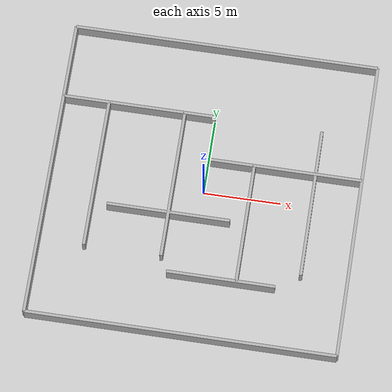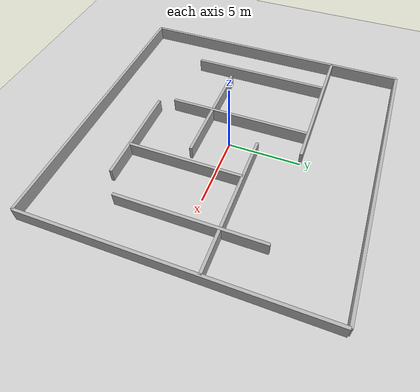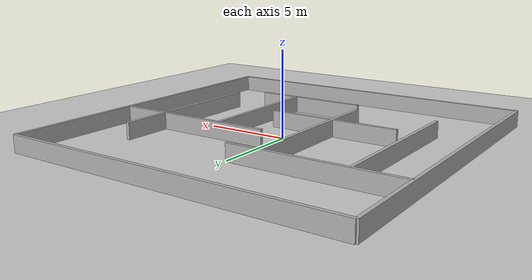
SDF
<sdf version="1.6">
 <world name="yolobot_maze_world">
  <include><uri>model://sun</uri></include>
  <include><uri>model://ground_plane</uri></include>
  <model name="wall_north">
   <static>true</static>
   <pose>0 10 0.5 0 0 0</pose>
   <link name="link">
    <collision name="collision"><geometry><box><size>20 0.2 1</size></box></geometry></collision>
    <visual name="visual">
     <geometry><box><size>20 0.2 1</size></box></geometry>
     <material><ambient>0.3 0.3 0.3 1</ambient><diffuse>0.7 0.7 0.7 1</diffuse></material>
    </visual>
   </link>
  </model>
  <model name="wall_south">
   <static>true</static>
   <pose>0 -10 0.5 0 0 0</pose>
   <link name="link">
    <collision name="collision"><geometry><box><size>20 0.2 1</size></box></geometry></collision>
    <visual name="visual">
     <geometry><box><size>20 0.2 1</size></box></geometry>
     <material><ambient>0.3 0.3 0.3 1</ambient><diffuse>0.7 0.7 0.7 1</diffuse></material>
    </visual>
   </link>
  </model>
  <model name="wall_east">
   <static>true</static>
   <pose>10 0 0.5 0 0 0</pose>
   <link name="link">
    <collision name="collision"><geometry><box><size>0.2 20 1</size></box></geometry></collision>
    <visual name="visual">
     <geometry><box><size>0.2 20 1</size></box></geometry>
     <material><ambient>0.3 0.3 0.3 1</ambient><diffuse>0.7 0.7 0.7 1</diffuse></material>
    </visual>
   </link>
  </model>
  <model name="wall_west">
   <static>true</static>
   <pose>-10 0 0.5 0 0 0</pose>
   <link name="link">
    <collision name="collision"><geometry><box><size>0.2 20 1</size></box></geometry></collision>
    <visual name="visual">
     <geometry><box><size>0.2 20 1</size></box></geometry>
     <material><ambient>0.3 0.3 0.3 1</ambient><diffuse>0.7 0.7 0.7 1</diffuse></material>
    </visual>
   </link>
  </model>
  <model name="wall_h1">
   <static>true</static>
   <pose>-5 5 0.5 0 0 0</pose>
   <link name="link">
    <collision name="collision"><geometry><box><size>10 0.2 1</size></box></geometry></collision>
    <visual name="visual">
     <geometry><box><size>10 0.2 1</size></box></geometry>
     <material><ambient>0.3 0.3 0.3 1</ambient><diffuse>0.7 0.7 0.7 1</diffuse></material>
    </visual>
   </link>
  </model>
  <model name="wall_h2">
   <static>true</static>
   <pose>5 2 0.5 0 0 0</pose>
   <link name="link">
    <collision name="collision"><geometry><box><size>10 0.2 1</size></box></geometry></collision>
    <visual name="visual">
     <geometry><box><size>10 0.2 1</size></box></geometry>
     <material><ambient>0.3 0.3 0.3 1</ambient><diffuse>0.7 0.7 0.7 1</diffuse></material>
    </visual>
   </link>
  </model>
  <model name="wall_h3">
   <static>true</static>
   <pose>-2 -2 0.5 0 0 0</pose>
   <link name="link">
    <collision name="collision"><geometry><box><size>8 0.2 1</size></box></geometry></collision>
    <visual name="visual">
     <geometry><box><size>8 0.2 1</size></box></geometry>
     <material><ambient>0.3 0.3 0.3 1</ambient><diffuse>0.7 0.7 0.7 1</diffuse></material>
    </visual>
   </link>
  </model>
  <model name="wall_h4">
   <static>true</static>
   <pose>2 -6 0.5 0 0 0</pose>
   <link name="link">
    <collision name="collision"><geometry><box><size>7 0.2 1</size></box></geometry></collision>
    <visual name="visual">
     <geometry><box><size>7 0.2 1</size></box></geometry>
     <material><ambient>0.3 0.3 0.3 1</ambient><diffuse>0.7 0.7 0.7 1</diffuse></material>
    </visual>
   </link>
  </model>
  <model name="wall_v1">
   <static>true</static>
   <pose>-7 0 0.5 0 0 0</pose>
   <link name="link">
    <collision name="collision"><geometry><box><size>0.2 10 1</size></box></geometry></collision>
    <visual name="visual">
     <geometry><box><size>0.2 10 1</size></box></geometry>
     <material><ambient>0.3 0.3 0.3 1</ambient><diffuse>0.7 0.7 0.7 1</diffuse></material>
    </visual>
   </link>
  </model>
  <model name="wall_v2">
   <static>true</static>
   <pose>-2 0 0.5 0 0 0</pose>
   <link name="link">
    <collision name="collision"><geometry><box><size>0.2 10 1</size></box></geometry></collision>
    <visual name="visual">
     <geometry><box><size>0.2 10 1</size></box></geometry>
     <material><ambient>0.3 0.3 0.3 1</ambient><diffuse>0.7 0.7 0.7 1</diffuse></material>
    </visual>
   </link>
  </model>
  <model name="wall_v3">
   <static>true</static>
   <pose>3 -2 0.5 0 0 0</pose>
   <link name="link">
    <collision name="collision"><geometry><box><size>0.2 8 1</size></box></geometry></collision>
    <visual name="visual">
     <geometry><box><size>0.2 8 1</size></box></geometry>
     <material><ambient>0.3 0.3 0.3 1</ambient><diffuse>0.7 0.7 0.7 1</diffuse></material>
    </visual>
   </link>
  </model>
  <model name="wall_v4">
   <static>true</static>
   <pose>7 0 0.5 0 0 0</pose>
   <link name="link">
    <collision name="collision"><geometry><box><size>0.2 10 1</size></box></geometry></collision>
    <visual name="visual">
     <geometry><box><size>0.2 10 1</size></box></geometry>
     <material><ambient>0.3 0.3 0.3 1</ambient><diffuse>0.7 0.7 0.7 1</diffuse></material>
    </visual>
   </link>
  </model>
  <physics type="ode">
   <real_time_update_rate>1000.0</real_time_update_rate>
   <max_step_size>0.001</max_step_size>
   <real_time_factor>1</real_time_factor>
   <ode>
    <solver>
     <type>quick</type>
     <iters>150</iters>
     <precon_iters>0</precon_iters>
     <sor>1.400000</sor>
     <use_dynamic_moi_rescaling>1</use_dynamic_moi_rescaling>
    </solver>
    <constraints>
     <cfm>0.00001</cfm>
     <erp>0.2</erp>
     <contact_max_correcting_vel>2000.000000</contact_max_correcting_vel>
     <contact_surface_layer>0.01000</contact_surface_layer>
    </constraints>
   </ode>
  </physics>
 </world>
</sdf>
